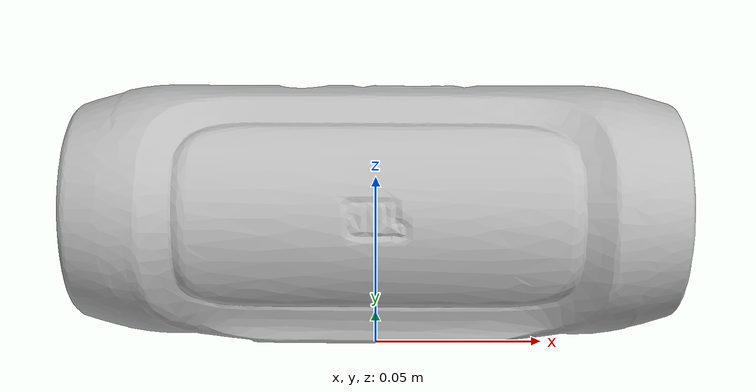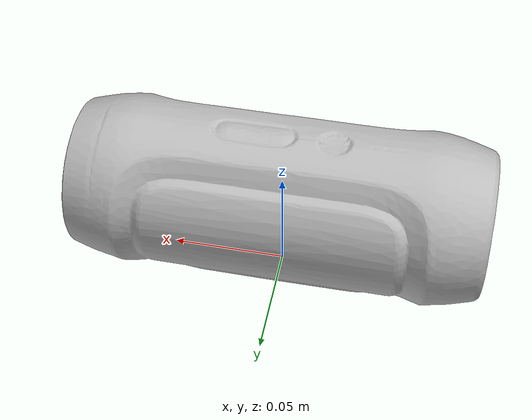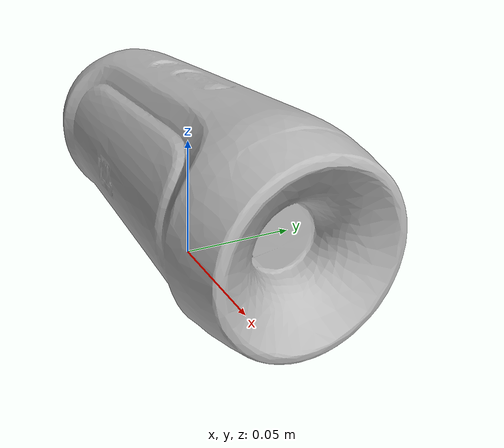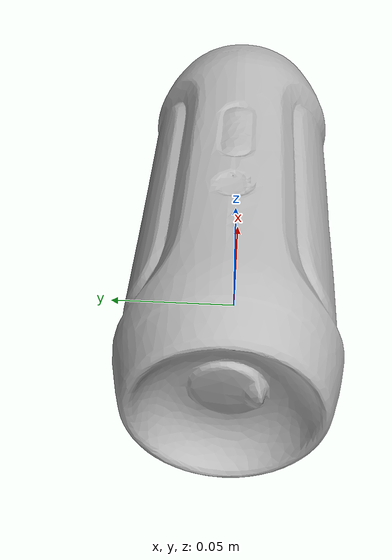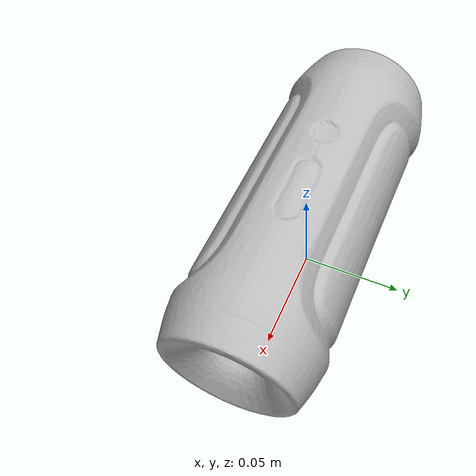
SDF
<?xml version="1.0" ?>
<sdf version="1.6">
  <model name="JBL_Charge_Speaker_portable_wireless_wired_Green">
    <static>false</static>
    <link name="link_0">

      <inertial>
        <mass>0.1</mass>
        <inertia>
          <ixx>0.001</ixx>
          <iyy>0.001</iyy>
          <izz>0.001</izz>
          <ixy>0</ixy>
          <ixz>0</ixz>
          <iyz>0</iyz>
        </inertia>
      </inertial>

      <visual name="visual">
      <pose>0 0 0.0025 0 0 0</pose>
        <geometry>
          <mesh>
            <uri>meshes/model.obj</uri>
          </mesh>
        </geometry>
      </visual>

      <collision name="collision_0">
        <geometry>
          <cylinder>
            <radius>0.05</radius>
            <length>0.12</length>
          </cylinder>
        </geometry>
        <surface>
          <friction>
            <ode>
              <mu>1.5</mu>
              <mu2>1.5</mu2>
            </ode>
          </friction>
          <contact>
            <ode>
              <kp>100000</kp>
              <kd>1.0</kd>
            </ode>
          </contact>
        </surface>
      </collision>

    </link>
  </model>
</sdf>
